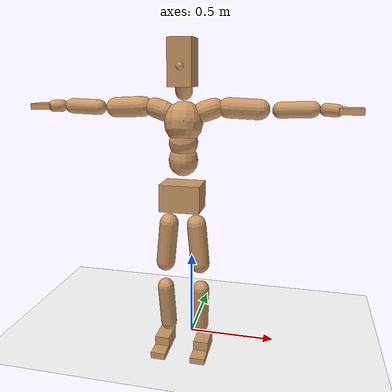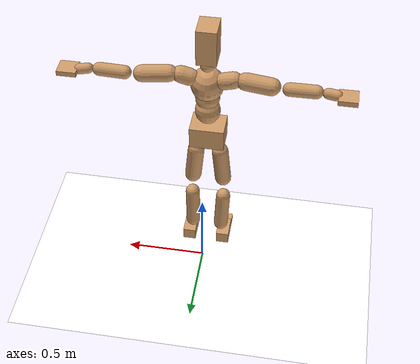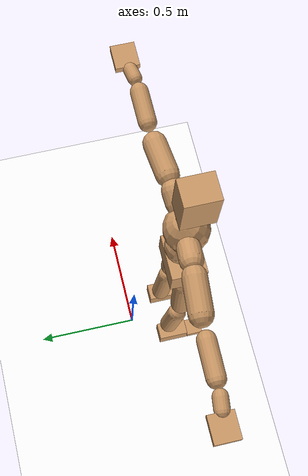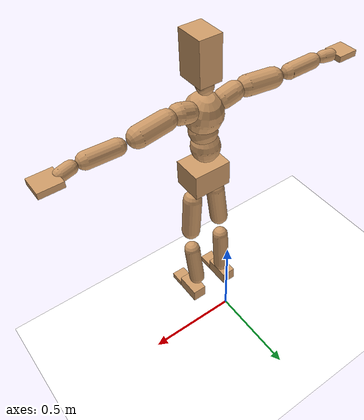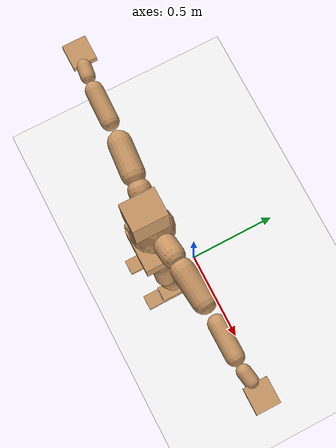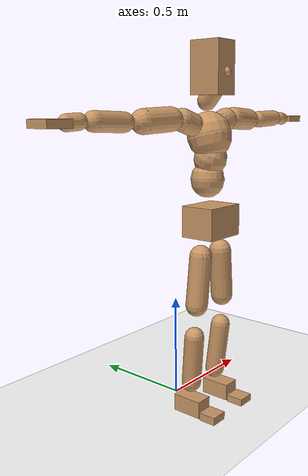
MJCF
<mujoco model="humanoid">
  <option integrator="implicitfast" />

  <visual>
    <global offwidth="1280" offheight="960" />
    <headlight active="1" ambient="0.34 0.34 0.34" diffuse="0.5 0.5 0.5" />
  </visual>

  <default>
    <joint damping="2" stiffness="2" armature="0.01" limited="true" solimplimit="0 .99 .01" />
    <geom condim="1" friction="0.7 0.005 0.0001" solimp=".99 .99 .003" solref="0.015 1" margin="0.001" rgba="0.8 0.6 .4 1" />
    <default class="smplcontact">
      <geom condim="3" friction="1. 0.005 0.0001" solref="0.015 1" solimp="0.98 0.98 0.001" priority="1" />
    </default>
    <default class="stiff_medium">
      <joint stiffness="10" />
    </default>
    <default class="stiff_medium_higher">
      <joint stiffness="50" />
    </default>
    <default class="stiff_high">
      <joint stiffness="100" />
    </default>
  </default>

  <asset>
    <texture type="skybox" builtin="gradient" rgb1="0.99 0.99 0.99" rgb2="0.608 0.828 0.892" width="100" />
    <texture builtin="flat" height="1278" mark="cross" markrgb="1 1 1" name="texgeom" random="0.01" rgb1="0.8 0.6 0.4" rgb2="0.8 0.6 0.4" type="cube" width="127" />
    <texture name="texplane" type="2d" builtin="checker" markrgb="1 1 1" rgb1="0.756 0.772 0.76" rgb2="0.6 0.6 0.6" width="100" height="100" />
    <material name="MatPlane" reflectance="0.5" texture="texplane" texrepeat="1 1" texuniform="true" />
    <material name="geom" texture="texgeom" texuniform="true" />
  </asset>

  <worldbody>
    <light name="tracking_light" pos="0 0 7" dir="0 0 -1" directional="true" cutoff="100" exponent="1" diffuse="1 1 1" specular="0.1 0.1 0.1" mode="trackcom" />
    <camera name="back" pos="0 3 2.4" xyaxes="-1 0 0 0 -1 2" mode="trackcom" />
    <camera name="side" pos="-3 0 2.4" xyaxes="0 -1 0 1 0 2" mode="trackcom" />
    <camera name="front_side" pos="-2.8 -2.8 0.8" xyaxes="0.5 -0.5 0 0.1 0.1 1" mode="trackcom" />
    <geom condim="3" name="floor" pos="0 0 0" rgba="1 1 1 1" size="100 100 .2" type="plane" material="MatPlane" />
    <body name="Pelvis" pos="-0.0018 -0.2233 0.93346" euler="90 0 0">
      <site name="Pelvis" size="0.01" />
      <freejoint name="Pelvis" />
      <geom type="box" pos="-0.0000 -0.0121 -0.0055" size="0.1069 0.0722 0.083" quat="1.0000 0.0000 0.0000 0.0000" density="3165.830099" name="Pelvis" />
      <body name="L_Hip" pos="0.0695 -0.0914 -0.0068">
        <joint name="L_Hip_x" type="hinge" pos="0 0 0" axis="1 0 0" stiffness="6.862717738095237" range="-160.0 22.92" class="stiff_medium" damping="10.18407204701845" armature="0.00671682867840693"/>
        <joint name="L_Hip_y" type="hinge" pos="0 0 0" axis="0 1 0" stiffness="6.843540833333332" range="-70.0 70.0" class="stiff_medium" damping="6.212831142752949" armature="0.005640248483701978"/>
        <joint name="L_Hip_z" type="hinge" pos="0 0 0" axis="0 0 1" stiffness="6.848027380952381" range="-28.65 90.0" class="stiff_medium" damping="6.782903954531086" armature="0.0067183998393994405"/>
        <geom type="capsule" density="2040.816327" fromto="0.0069 -0.075 -0.0009 0.0274 -0.3002 -0.0036" size="0.052275" name="L_Hip" />
        <body name="L_Knee" pos="0.0343 -0.3752 -0.0045">
          <joint name="L_Knee_x" type="hinge" pos="0 0 0" axis="1 0 0" range="-5.16 171.89" damping="5.292069806053835" armature="0.006508022870043397" stiffness="1.3447825952380952"/>
          <joint name="L_Knee_y" type="hinge" pos="0 0 0" axis="0 1 0" range="-4.58 6.88" damping="4.885017787563635" armature="0.005463809391532144" stiffness="1.3648558333333334"/>
          <joint name="L_Knee_z" type="hinge" pos="0 0 0" axis="0 0 1" range="-6.88 4.58" damping="5.291965820359806" armature="0.006515345471875371" stiffness="1.3432184047619047"/>
          <geom type="capsule" density="1234.567901" fromto="-0.0027 -0.0796 -0.0087 -0.0109 -0.3184 -0.035" size="0.045985" name="L_Knee" />
          <body name="L_Ankle" pos="-0.0136 -0.398 -0.0437">
            <joint name="L_Ankle_x" type="hinge" pos="0 0 0" axis="1 0 0" range="-45.84 45.84" class="stiff_medium" damping="3.505395739573715" armature="0.0055579525028932545" stiffness="6.141250000000001"/>
            <joint name="L_Ankle_y" type="hinge" pos="0 0 0" axis="0 1 0" range="-74.48 22.92" class="stiff_medium" damping="1.7461104640747676" armature="0.005516252577517968" stiffness="6.141250000000001"/>
            <joint name="L_Ankle_z" type="hinge" pos="0 0 0" axis="0 0 1" range="-4.58 4.58" class="stiff_medium" damping="3.404711663388338" armature="0.0052432600632392875" stiffness="6.141250000000001"/>
            <geom type="box" pos="0.0233 -0.0239 0.0242" size="0.041055 0.03944 0.07225" quat="1.0000 0.0000 0.0000 0.0000" density="449.071558" name="L_Ankle" class="smplcontact" />
            <body name="L_Toe" pos="0.0264 -0.0558 0.1193">
              <joint name="L_Toe_x" type="hinge" pos="0 0 0" axis="1 0 0" range="-91.67 22.92" armature="0.00508496817556758" damping="1.1176414596498183" stiffness="1.2282500000000003"/>
              <joint name="L_Toe_y" type="hinge" pos="0 0 0" axis="0 1 0" range="-4.58 4.58" armature="0.004893561584678726" damping="1.096404762519905" stiffness="1.2282500000000003"/>
              <joint name="L_Toe_z" type="hinge" pos="0 0 0" axis="0 0 1" range="-4.58 4.58" armature="0.004506547760312158" damping="1.0521565745271384" stiffness="1.2282500000000003"/>
              <geom type="box" pos="-0.003 0.0055 0.0248" size="0.04063 0.017 0.04216" quat="1.0000 0.0000 0.0000 0.0000" density="423.206892" name="L_Toe" class="smplcontact" />
            </body>
          </body>
        </body>
      </body>
      <body name="R_Hip" pos="-0.0677 -0.0905 -0.0043">
        <joint name="R_Hip_x" type="hinge" pos="0 0 0" axis="1 0 0" stiffness="6.862717738095237" range="-160.0 22.92" class="stiff_medium" damping="10.18407204701845" armature="0.00671682867840693"/>
        <joint name="R_Hip_y" type="hinge" pos="0 0 0" axis="0 1 0" stiffness="6.843540833333332" range="-70.0 70.0" class="stiff_medium" damping="6.212831142752949" armature="0.005640248483701978"/>
        <joint name="R_Hip_z" type="hinge" pos="0 0 0" axis="0 0 1" stiffness="6.848027380952381" range="-90.0 28.65" class="stiff_medium" damping="6.782903954531086" armature="0.0067183998393994405"/>
        <geom type="capsule" density="2040.816327" fromto="-0.0077 -0.0765 -0.0018 -0.0306 -0.3061 -0.0071" size="0.05151" name="R_Hip" />
        <body name="R_Knee" pos="-0.0383 -0.3826 -0.0089">
          <joint name="R_Knee_x" type="hinge" pos="0 0 0" axis="1 0 0" range="-5.16 171.89" damping="5.292069806053835" armature="0.006508022870043397" stiffness="1.3447825952380952"/>
          <joint name="R_Knee_y" type="hinge" pos="0 0 0" axis="0 1 0" range="-6.88 4.58" damping="4.885017787563635" armature="0.005463809391532144" stiffness="1.3648558333333334"/>
          <joint name="R_Knee_z" type="hinge" pos="0 0 0" axis="0 0 1" range="-4.58 6.88" damping="5.291965820359806" armature="0.006515345471875371" stiffness="1.3432184047619047"/>
          <geom type="capsule" density="1234.567901" fromto="0.0032 -0.0797 -0.0085 0.0126 -0.3187 -0.0338" size="0.045985" name="R_Knee" />
          <body name="R_Ankle" pos="0.0158 -0.3984 -0.0423">
            <joint name="R_Ankle_x" type="hinge" pos="0 0 0" axis="1 0 0" range="-45.84 45.84" class="stiff_medium" damping="3.505395739573715" armature="0.0055579525028932545" stiffness="6.141250000000001"/>
            <joint name="R_Ankle_y" type="hinge" pos="0 0 0" axis="0 1 0" range="-22.92 74.48" class="stiff_medium" damping="1.7461104640747676" armature="0.005516252577517968" stiffness="6.141250000000001"/>
            <joint name="R_Ankle_z" type="hinge" pos="0 0 0" axis="0 0 1" range="-4.58 4.58" class="stiff_medium" damping="3.404711663388338" armature="0.0052432600632392875" stiffness="6.141250000000001"/>
            <geom type="box" pos="-0.0212 -0.0174 0.0256" size="0.041055 0.04063 0.073525" quat="1.0000 0.0000 0.0000 0.0000" density="434.700981" name="R_Ankle" class="smplcontact" />
            <body name="R_Toe" pos="-0.0254 -0.0481 0.1233">
              <joint name="R_Toe_x" type="hinge" pos="0 0 0" axis="1 0 0" range="-91.67 22.92" armature="0.00508496817556758" damping="1.1176414596498183" stiffness="1.2282500000000003"/>
              <joint name="R_Toe_y" type="hinge" pos="0 0 0" axis="0 1 0" range="-4.58 4.58" armature="0.004893561584678726" damping="1.096404762519905" stiffness="1.2282500000000003"/>
              <joint name="R_Toe_z" type="hinge" pos="0 0 0" axis="0 0 1" range="-4.58 4.58" armature="0.004506547760312158" damping="1.0521565745271384" stiffness="1.2282500000000003"/>
              <geom type="box" pos="0.0042 0.0045 0.0227" size="0.040715 0.01836 0.041905" quat="1.0000 0.0000 0.0000 0.0000" density="407.384095" name="R_Toe" class="smplcontact" />
            </body>
          </body>
        </body>
      </body>
      <body name="Torso" pos="-0.0025 0.109 -0.0267">
        <joint name="Torso_x" type="hinge" pos="0 0 0" axis="1 0 0" range="-25.78 57.3" class="stiff_medium" damping="15.0" armature="0.010000000000000002" stiffness="10.0"/>
        <joint name="Torso_y" type="hinge" pos="0 0 0" axis="0 1 0" range="-57.3 57.3" class="stiff_high" damping="20.0" armature="0.010000000000000002" stiffness="100.0"/>
        <joint name="Torso_z" type="hinge" pos="0 0 0" axis="0 0 1" range="-34.38 34.38" class="stiff_high" damping="20.0" armature="0.01" stiffness="100.0"/>
        <geom type="capsule" density="2040.816327" fromto="0.0025 0.0608 0.0005 0.003 0.0743 0.0006" size="0.0769" name="Torso" />
        <body name="Spine" pos="0.0055 0.1352 0.0011">
          <joint name="Spine_x" type="hinge" pos="0 0 0" axis="1 0 0" stiffness="10.0" range="-25.78 57.3" class="stiff_medium" damping="15.000000000000004" armature="0.010000000000000007"/>
          <joint name="Spine_y" type="hinge" pos="0 0 0" axis="0 1 0" stiffness="10.0" range="-57.3 57.3" class="stiff_high" damping="8.0" armature="0.010000000000000002"/>
          <joint name="Spine_z" type="hinge" pos="0 0 0" axis="0 0 1" stiffness="20.0" range="-34.38 34.38" class="stiff_high" damping="12.0" armature="0.01"/>
          <geom type="capsule" density="2040.816327" fromto="0.0007 0.0238 0.0114 0.0008 0.0291 0.014" size="0.0755" name="Spine" />
          <body name="Chest" pos="0.0015 0.0529 0.0254">
            <joint name="Chest_x" type="hinge" pos="0 0 0" axis="1 0 0" stiffness="10.0" range="-25.78 57.3" class="stiff_medium" damping="14.999999999999998" armature="0.009999999999999998"/>
            <joint name="Chest_y" type="hinge" pos="0 0 0" axis="0 1 0" stiffness="10.0" range="-57.3 57.3" class="stiff_high" damping="8.0" armature="0.010000000000000002"/>
            <joint name="Chest_z" type="hinge" pos="0 0 0" axis="0 0 1" stiffness="20.0" range="-34.38 34.38" class="stiff_high" damping="12.0" armature="0.010000000000000002"/>
            <geom type="capsule" density="2040.816327" fromto="-0.0009 0.0682 -0.0173 -0.001 0.0833 -0.0212" size="0.1002" name="Chest" />
            <body name="Neck" pos="-0.0028 0.2139 -0.0429">
              <joint name="Neck_x" type="hinge" pos="0 0 0" axis="1 0 0" range="-28.65 57.3" class="stiff_medium_higher" damping="9.999999999999993" armature="0.009999999999999988" stiffness="50.0"/>
              <joint name="Neck_y" type="hinge" pos="0 0 0" axis="0 1 0" range="-40.11 40.11" class="stiff_medium_higher" damping="10.0" armature="0.010000000000000002" stiffness="50.0"/>
              <joint name="Neck_z" type="hinge" pos="0 0 0" axis="0 0 1" range="-40.11 40.11" class="stiff_medium_higher" damping="9.99999999999999" armature="0.009999999999999978" stiffness="50.0"/>
              <geom type="capsule" density="1000" fromto="0.001 0.013 0.0103 0.0041 0.052 0.0411" size="0.0436" name="Neck" />
              <body name="Head" pos="0.0052 0.065 0.0513">
                <joint name="Head_x" type="hinge" pos="0 0 0" axis="1 0 0" range="-28.65 57.3" class="stiff_medium_higher" damping="1.9999999999999973" armature="0.009999999999999974" stiffness="50.0"/>
                <joint name="Head_y" type="hinge" pos="0 0 0" axis="0 1 0" range="-40.11 40.11" class="stiff_medium_higher" damping="1.9999999999999998" armature="0.009999999999999998" stiffness="50.0"/>
                <joint name="Head_z" type="hinge" pos="0 0 0" axis="0 0 1" range="-40.11 40.11" class="stiff_medium_higher" damping="1.9999999999999953" armature="0.009999999999999955" stiffness="50.0"/>
                <geom type="box" pos="-0.0042 0.0876 -0.0116" size="0.0606 0.1154 0.076" quat="1.0000 0.0000 0.0000 0.0000" density="1018.069894" name="Head" />
                <geom type="capsule" name="nose" size="0.02 0.01" pos="0 0.07 0.05" quat="1 0 0 0" mass="0" contype="0" conaffinity="0" />
              </body>
            </body>
            <body name="L_Thorax" pos="0.0788 0.1217 -0.0341">
              <joint name="L_Thorax_x" type="hinge" pos="0 0 0" axis="1 0 0" range="-10.89 4.58" class="stiff_medium_higher" damping="19.999999999999957" armature="0.009999999999999959" stiffness="50.0"/>
              <joint name="L_Thorax_y" type="hinge" pos="0 0 0" axis="0 1 0" range="-28.65 17.19" class="stiff_medium_higher" damping="20.0" armature="0.010000000000000002" stiffness="50.0"/>
              <joint name="L_Thorax_z" type="hinge" pos="0 0 0" axis="0 0 1" range="-31.51 40.11" class="stiff_medium_higher" damping="20.0" armature="0.01" stiffness="50.0"/>
              <geom type="capsule" density="1000" fromto="0.0182 0.0061 -0.0018 0.0728 0.0244 -0.0071" size="0.0521" name="L_Thorax" />
              <body name="L_Shoulder" pos="0.091 0.0305 -0.0089">
                <joint name="L_Shoulder_x" type="hinge" pos="0 0 0" axis="1 0 0" range="-97.4 97.4" class="stiff_medium" damping="6.0000000000000355" armature="0.01000000000000012" stiffness="10.0"/>
                <joint name="L_Shoulder_y" type="hinge" pos="0 0 0" axis="0 1 0" range="-108.86 80.21" class="stiff_medium" damping="6.0" armature="0.01" stiffness="10.0"/>
                <joint name="L_Shoulder_z" type="hinge" pos="0 0 0" axis="0 0 1" range="-97.4 85.94" class="stiff_medium" damping="6.000000000000003" armature="0.010000000000000009" stiffness="10.0"/>
                <geom type="capsule" density="1000" fromto="0.0519 -0.0026 -0.0055 0.2077 -0.0102 -0.022" size="0.0517" name="L_Shoulder" />
                <body name="L_Elbow" pos="0.2596 -0.0128 -0.0275">
                  <joint name="L_Elbow_x" type="hinge" pos="0 0 0" axis="1 0 0" range="-17.19 4.58" damping="4.999999999999992" armature="0.009999999999999967" stiffness="2.0"/>
                  <joint name="L_Elbow_y" type="hinge" pos="0 0 0" axis="0 1 0" range="-180.0 17.19" damping="5.0000000000000036" armature="0.010000000000000014" stiffness="2.0"/>
                  <joint name="L_Elbow_z" type="hinge" pos="0 0 0" axis="0 0 1" range="-100.84 4.58" damping="5.000000000000002" armature="0.010000000000000009" stiffness="2.0"/>
                  <geom type="capsule" density="1000" fromto="0.0498 0.0018 -0.0002 0.1994 0.0072 -0.0009" size="0.0405" name="L_Elbow" />
                  <body name="L_Wrist" pos="0.2492 0.009 -0.0012">
                    <joint name="L_Wrist_x" type="hinge" pos="0 0 0" axis="1 0 0" range="-180.0 22.92" armature="0.009999999999999554" damping="1.9999999999999554" stiffness="2.0"/>
                    <joint name="L_Wrist_y" type="hinge" pos="0 0 0" axis="0 1 0" range="-17.19 17.19" armature="0.009999999999999945" damping="1.9999999999999944" stiffness="2.0"/>
                    <joint name="L_Wrist_z" type="hinge" pos="0 0 0" axis="0 0 1" range="-22.92 22.92" armature="0.009999999999999903" damping="1.9999999999999902" stiffness="2.0"/>
                    <geom type="capsule" density="1000" fromto="0.0168 -0.0016 -0.003 0.0672 -0.0065 -0.012" size="0.0318" name="L_Wrist" class="smplcontact" />
                    <body name="L_Hand" pos="0.084 -0.0082 -0.0149">
                      <joint name="L_Hand_x" type="hinge" pos="0 0 0" axis="1 0 0" range="-17.19 17.19" armature="0.009999999999999816" damping="1.9999999999999816" stiffness="2.0"/>
                      <joint name="L_Hand_y" type="hinge" pos="0 0 0" axis="0 1 0" range="-51.57 51.57" armature="0.010000000000000177" damping="2.0000000000000178" stiffness="2.0"/>
                      <joint name="L_Hand_z" type="hinge" pos="0 0 0" axis="0 0 1" range="-91.67 91.67" armature="0.010000000000000009" damping="2.000000000000001" stiffness="2.0"/>
                      <geom type="box" pos="0.0493 0.001 -0.0058" size="0.0585 0.0158 0.0538" quat="1.0000 0.0000 0.0000 0.0000" density="400.552564" name="L_Hand" class="smplcontact" />
                    </body>
                  </body>
                </body>
              </body>
            </body>
            <body name="R_Thorax" pos="-0.0818 0.1188 -0.0386">
              <joint name="R_Thorax_x" type="hinge" pos="0 0 0" axis="1 0 0" range="-10.89 4.58" class="stiff_medium_higher" damping="19.999999999999957" armature="0.009999999999999959" stiffness="50.0"/>
              <joint name="R_Thorax_y" type="hinge" pos="0 0 0" axis="0 1 0" range="-17.19 28.65" class="stiff_medium_higher" damping="20.0" armature="0.010000000000000002" stiffness="50.0"/>
              <joint name="R_Thorax_z" type="hinge" pos="0 0 0" axis="0 0 1" range="-40.11 31.51" class="stiff_medium_higher" damping="20.0" armature="0.01" stiffness="50.0"/>
              <geom type="capsule" density="1000" fromto="-0.0192 0.0065 -0.0018 -0.0768 0.026 -0.0073" size="0.0511" name="R_Thorax" />
              <body name="R_Shoulder" pos="-0.096 0.0326 -0.0091">
                <joint name="R_Shoulder_x" type="hinge" pos="0 0 0" axis="1 0 0" range="-97.4 97.4" class="stiff_medium" damping="6.0000000000000355" armature="0.01000000000000012" stiffness="10.0"/>
                <joint name="R_Shoulder_y" type="hinge" pos="0 0 0" axis="0 1 0" range="-80.21 108.86" class="stiff_medium" damping="6.0" armature="0.01" stiffness="10.0"/>
                <joint name="R_Shoulder_z" type="hinge" pos="0 0 0" axis="0 0 1" range="-85.94 97.4" class="stiff_medium" damping="6.000000000000003" armature="0.010000000000000009" stiffness="10.0"/>
                <geom type="capsule" density="1000" fromto="-0.0507 -0.0027 -0.0043 -0.203 -0.0107 -0.0171" size="0.0531" name="R_Shoulder" />
                <body name="R_Elbow" pos="-0.2537 -0.0133 -0.0214">
                  <joint name="R_Elbow_x" type="hinge" pos="0 0 0" axis="1 0 0" range="-17.19 4.58" damping="4.999999999999992" armature="0.009999999999999967" stiffness="2.0"/>
                  <joint name="R_Elbow_y" type="hinge" pos="0 0 0" axis="0 1 0" range="-17.19 180.0" damping="5.0000000000000036" armature="0.010000000000000014" stiffness="2.0"/>
                  <joint name="R_Elbow_z" type="hinge" pos="0 0 0" axis="0 0 1" range="-4.58 100.84" damping="5.000000000000002" armature="0.010000000000000009" stiffness="2.0"/>
                  <geom type="capsule" density="1000" fromto="-0.0511 0.0016 -0.0011 -0.2042 0.0062 -0.0044" size="0.0408" name="R_Elbow" />
                  <body name="R_Wrist" pos="-0.2553 0.0078 -0.0056">
                    <joint name="R_Wrist_x" type="hinge" pos="0 0 0" axis="1 0 0" range="-180.0 22.92" armature="0.009999999999999554" damping="1.9999999999999554" stiffness="2.0"/>
                    <joint name="R_Wrist_y" type="hinge" pos="0 0 0" axis="0 1 0" range="-17.19 17.19" armature="0.009999999999999945" damping="1.9999999999999944" stiffness="2.0"/>
                    <joint name="R_Wrist_z" type="hinge" pos="0 0 0" axis="0 0 1" range="-22.92 22.92" armature="0.009999999999999903" damping="1.9999999999999902" stiffness="2.0"/>
                    <geom type="capsule" density="1000" fromto="-0.0169 -0.0012 -0.0021 -0.0677 -0.0049 -0.0083" size="0.0326" name="R_Wrist" class="smplcontact" />
                    <body name="R_Hand" pos="-0.0846 -0.0061 -0.0103">
                      <joint name="R_Hand_x" type="hinge" pos="0 0 0" axis="1 0 0" range="-17.19 17.19" armature="0.009999999999999816" damping="1.9999999999999816" stiffness="2.0"/>
                      <joint name="R_Hand_y" type="hinge" pos="0 0 0" axis="0 1 0" range="-51.57 51.57" armature="0.010000000000000177" damping="2.0000000000000178" stiffness="2.0"/>
                      <joint name="R_Hand_z" type="hinge" pos="0 0 0" axis="0 0 1" range="-91.67 91.67" armature="0.010000000000000009" damping="2.000000000000001" stiffness="2.0"/>
                      <geom type="box" pos="-0.0462 -0.0009 -0.0079" size="0.0569 0.0164 0.0546" quat="1.0000 0.0000 0.0000 0.0000" density="403.679611" name="R_Hand" class="smplcontact" />
                    </body>
                  </body>
                </body>
              </body>
            </body>
          </body>
        </body>
      </body>
    </body>
  </worldbody>
  <actuator>
    <general name="L_Hip_x" joint="L_Hip_x" biastype="affine" gainprm="197.18651275687364" biasprm="-147.7713053176921 -123.52891928571428 -1.3578762729357934" ctrllimited="true" ctrlrange="-1 1" forcerange="-247.05783857142856 247.05783857142856" />
    <general name="L_Hip_y" joint="L_Hip_y" biastype="affine" gainprm="150.49732324579236" biasprm="0.0 -123.18373499999998 -1.2425662285505896" ctrllimited="true" ctrlrange="-1 1" forcerange="-246.36746999999997 246.36746999999997" />
    <general name="L_Hip_z" joint="L_Hip_z" biastype="affine" gainprm="127.63009947495874" biasprm="65.99331312927701 -123.26449285714286 -1.3565807909062173" ctrllimited="true" ctrlrange="-1 1" forcerange="-246.5289857142857 246.5289857142857" />
    <general name="L_Knee_x" joint="L_Knee_x" biastype="affine" gainprm="186.99840063201063" biasprm="176.09852209757202 -121.03043357142856 -1.3230174515134587" ctrllimited="true" ctrlrange="-1 1" forcerange="-242.06086714285712 242.06086714285712" />
    <general name="L_Knee_y" joint="L_Knee_y" biastype="affine" gainprm="12.284607334634286" biasprm="2.465497109045276 -122.83702500000001 -1.2212544468909088" ctrllimited="true" ctrlrange="-1 1" forcerange="-245.67405000000002 245.67405000000002" />
    <general name="L_Knee_z" joint="L_Knee_z" biastype="affine" gainprm="12.08985613290331" biasprm="-2.4264109167257955 -120.88965642857143 -1.3229914550899515" ctrllimited="true" ctrlrange="-1 1" forcerange="-241.77931285714286 241.77931285714286" />
    <general name="L_Ankle_x" joint="L_Ankle_x" biastype="affine" gainprm="44.22025708580328" biasprm="0.0 -55.271250000000016 -1.1684652465245717" ctrllimited="true" ctrlrange="-1 1" forcerange="-110.54250000000003 110.54250000000003" />
    <general name="L_Ankle_y" joint="L_Ankle_y" biastype="affine" gainprm="46.97919982719502" biasprm="-24.86907128429338 -55.271250000000016 -1.1640736427165117" ctrllimited="true" ctrlrange="-1 1" forcerange="-110.54250000000003 110.54250000000003" />
    <general name="L_Ankle_z" joint="L_Ankle_z" biastype="affine" gainprm="4.418167047403555" biasprm="0.0 -55.271250000000016 -1.1349038877961126" ctrllimited="true" ctrlrange="-1 1" forcerange="-110.54250000000003 110.54250000000003" />
    <general name="L_Toe_x" joint="L_Toe_x" biastype="affine" gainprm="44.2163984246265" biasprm="-26.528295590305188 -44.21700000000001 -0.44705658385992736" ctrllimited="true" ctrlrange="-1 1" forcerange="-88.43400000000003 88.43400000000003" />
    <general name="L_Toe_y" joint="L_Toe_y" biastype="affine" gainprm="3.5345336379228445" biasprm="0.0 -44.21700000000001 -0.438561905007962" ctrllimited="true" ctrlrange="-1 1" forcerange="-88.43400000000003 88.43400000000003" />
    <general name="L_Toe_z" joint="L_Toe_z" biastype="affine" gainprm="3.5345336379228445" biasprm="0.0 -44.21700000000001 -0.42086262981085537" ctrllimited="true" ctrlrange="-1 1" forcerange="-88.43400000000003 88.43400000000003" />
    <general name="R_Hip_x" joint="R_Hip_x" biastype="affine" gainprm="197.18651275687364" biasprm="-147.7713053176921 -123.52891928571428 -1.3578762729357934" ctrllimited="true" ctrlrange="-1 1" forcerange="-247.05783857142856 247.05783857142856" />
    <general name="R_Hip_y" joint="R_Hip_y" biastype="affine" gainprm="150.49732324579236" biasprm="0.0 -123.18373499999998 -1.2425662285505896" ctrllimited="true" ctrlrange="-1 1" forcerange="-246.36746999999997 246.36746999999997" />
    <general name="R_Hip_z" joint="R_Hip_z" biastype="affine" gainprm="127.63009947495874" biasprm="-65.99331312927701 -123.26449285714286 -1.3565807909062173" ctrllimited="true" ctrlrange="-1 1" forcerange="-246.5289857142857 246.5289857142857" />
    <general name="R_Knee_x" joint="R_Knee_x" biastype="affine" gainprm="186.99840063201063" biasprm="176.09852209757202 -121.03043357142856 -1.3230174515134587" ctrllimited="true" ctrlrange="-1 1" forcerange="-242.06086714285712 242.06086714285712" />
    <general name="R_Knee_y" joint="R_Knee_y" biastype="affine" gainprm="12.284607334634286" biasprm="-2.465497109045276 -122.83702500000001 -1.2212544468909088" ctrllimited="true" ctrlrange="-1 1" forcerange="-245.67405000000002 245.67405000000002" />
    <general name="R_Knee_z" joint="R_Knee_z" biastype="affine" gainprm="12.08985613290331" biasprm="2.4264109167257955 -120.88965642857143 -1.3229914550899515" ctrllimited="true" ctrlrange="-1 1" forcerange="-241.77931285714286 241.77931285714286" />
    <general name="R_Ankle_x" joint="R_Ankle_x" biastype="affine" gainprm="44.22025708580328" biasprm="0.0 -55.271250000000016 -1.1684652465245717" ctrllimited="true" ctrlrange="-1 1" forcerange="-110.54250000000003 110.54250000000003" />
    <general name="R_Ankle_y" joint="R_Ankle_y" biastype="affine" gainprm="46.97919982719502" biasprm="24.86907128429338 -55.271250000000016 -1.1640736427165117" ctrllimited="true" ctrlrange="-1 1" forcerange="-110.54250000000003 110.54250000000003" />
    <general name="R_Ankle_z" joint="R_Ankle_z" biastype="affine" gainprm="4.418167047403555" biasprm="0.0 -55.271250000000016 -1.1349038877961126" ctrllimited="true" ctrlrange="-1 1" forcerange="-110.54250000000003 110.54250000000003" />
    <general name="R_Toe_x" joint="R_Toe_x" biastype="affine" gainprm="44.2163984246265" biasprm="-26.528295590305188 -44.21700000000001 -0.44705658385992736" ctrllimited="true" ctrlrange="-1 1" forcerange="-88.43400000000003 88.43400000000003" />
    <general name="R_Toe_y" joint="R_Toe_y" biastype="affine" gainprm="3.5345336379228445" biasprm="0.0 -44.21700000000001 -0.438561905007962" ctrllimited="true" ctrlrange="-1 1" forcerange="-88.43400000000003 88.43400000000003" />
    <general name="R_Toe_z" joint="R_Toe_z" biastype="affine" gainprm="3.5345336379228445" biasprm="0.0 -44.21700000000001 -0.42086262981085537" ctrllimited="true" ctrlrange="-1 1" forcerange="-88.43400000000003 88.43400000000003" />
    <general name="Torso_x" joint="Torso_x" biastype="affine" gainprm="174.00234510682668" biasprm="66.0153336274335 -240.0 -4.0" ctrllimited="true" ctrlrange="-1 1" forcerange="-360.0 360.0" />
    <general name="Torso_y" joint="Torso_y" biastype="affine" gainprm="240.0176787342602" biasprm="0.0 -240.0 -4.0" ctrllimited="true" ctrlrange="-1 1" forcerange="-360.0 360.0" />
    <general name="Torso_z" joint="Torso_z" biastype="affine" gainprm="144.01060724055614" biasprm="0.0 -240.0 -4.0" ctrllimited="true" ctrlrange="-1 1" forcerange="-360.0 360.0" />
    <general name="Spine_x" joint="Spine_x" biastype="affine" gainprm="174.00234510682668" biasprm="66.0153336274335 -240.0 -4.000000000000001" ctrllimited="true" ctrlrange="-1 1" forcerange="-360.0 360.0" />
    <general name="Spine_y" joint="Spine_y" biastype="affine" gainprm="240.0176787342602" biasprm="0.0 -240.0 -4.0" ctrllimited="true" ctrlrange="-1 1" forcerange="-360.0 360.0" />
    <general name="Spine_z" joint="Spine_z" biastype="affine" gainprm="144.01060724055614" biasprm="0.0 -240.0 -4.0" ctrllimited="true" ctrlrange="-1 1" forcerange="-360.0 360.0" />
    <general name="Chest_x" joint="Chest_x" biastype="affine" gainprm="174.00234510682668" biasprm="66.0153336274335 -240.0 -3.9999999999999996" ctrllimited="true" ctrlrange="-1 1" forcerange="-360.0 360.0" />
    <general name="Chest_y" joint="Chest_y" biastype="affine" gainprm="240.0176787342602" biasprm="0.0 -240.0 -4.0" ctrllimited="true" ctrlrange="-1 1" forcerange="-360.0 360.0" />
    <general name="Chest_z" joint="Chest_z" biastype="affine" gainprm="144.01060724055614" biasprm="0.0 -240.0 -4.0" ctrllimited="true" ctrlrange="-1 1" forcerange="-360.0 360.0" />
    <general name="Neck_x" joint="Neck_x" biastype="affine" gainprm="27.00198885760427" biasprm="9.000662952534757 -36.0 -0.7999999999999995" ctrllimited="true" ctrlrange="-1 1" forcerange="-72.0 72.0" />
    <general name="Neck_y" joint="Neck_y" biastype="affine" gainprm="25.20185626709732" biasprm="0.0 -36.0 -0.8" ctrllimited="true" ctrlrange="-1 1" forcerange="-72.0 72.0" />
    <general name="Neck_z" joint="Neck_z" biastype="affine" gainprm="25.20185626709732" biasprm="0.0 -36.0 -0.7999999999999992" ctrllimited="true" ctrlrange="-1 1" forcerange="-72.0 72.0" />
    <general name="Head_x" joint="Head_x" biastype="affine" gainprm="18.001325905069514" biasprm="6.000441968356505 -24.0 -0.7999999999999989" ctrllimited="true" ctrlrange="-1 1" forcerange="-48.0 48.0" />
    <general name="Head_y" joint="Head_y" biastype="affine" gainprm="16.801237511398213" biasprm="0.0 -24.0 -0.7999999999999999" ctrllimited="true" ctrlrange="-1 1" forcerange="-48.0 48.0" />
    <general name="Head_z" joint="Head_z" biastype="affine" gainprm="16.801237511398213" biasprm="0.0 -24.0 -0.7999999999999982" ctrllimited="true" ctrlrange="-1 1" forcerange="-48.0 48.0" />
    <general name="L_Thorax_x" joint="L_Thorax_x" biastype="affine" gainprm="16.200146117011364" biasprm="-6.6078165480505335 -120.0 -1.5999999999999968" ctrllimited="true" ctrlrange="-1 1" forcerange="-240.0 240.0" />
    <general name="L_Thorax_y" joint="L_Thorax_y" biastype="affine" gainprm="48.00353574685204" biasprm="-12.00088393671301 -120.0 -1.6" ctrllimited="true" ctrlrange="-1 1" forcerange="-240.0 240.0" />
    <general name="L_Thorax_z" joint="L_Thorax_z" biastype="affine" gainprm="75.00028861670033" biasprm="9.00589894029074 -120.0 -1.6" ctrllimited="true" ctrlrange="-1 1" forcerange="-240.0 240.0" />
    <general name="L_Shoulder_x" joint="L_Shoulder_x" biastype="affine" gainprm="81.5976331892389" biasprm="0.0 -48.0 -1.6000000000000096" ctrllimited="true" ctrlrange="-1 1" forcerange="-96.0 96.0" />
    <general name="L_Shoulder_y" joint="L_Shoulder_y" biastype="affine" gainprm="79.19745640189629" biasprm="-12.00088393671301 -48.0 -1.6" ctrllimited="true" ctrlrange="-1 1" forcerange="-96.0 96.0" />
    <general name="L_Shoulder_z" joint="L_Shoulder_z" biastype="affine" gainprm="76.79727961455369" biasprm="-4.800353574685214 -48.0 -1.6000000000000008" ctrllimited="true" ctrlrange="-1 1" forcerange="-96.0 96.0" />
    <general name="L_Elbow_x" joint="L_Elbow_x" biastype="affine" gainprm="13.67849441372996" biasprm="-7.923096672353461 -72.0 -0.7999999999999987" ctrllimited="true" ctrlrange="-1 1" forcerange="-144.0 144.0" />
    <general name="L_Elbow_y" joint="L_Elbow_y" biastype="affine" gainprm="123.89813107227425" biasprm="-102.29653998619085 -72.0 -0.8000000000000006" ctrllimited="true" ctrlrange="-1 1" forcerange="-144.0 144.0" />
    <general name="L_Elbow_z" joint="L_Elbow_z" biastype="affine" gainprm="66.23733950828719" biasprm="-60.4819417669107 -72.0 -0.8000000000000004" ctrllimited="true" ctrlrange="-1 1" forcerange="-144.0 144.0" />
    <general name="L_Wrist_x" joint="L_Wrist_x" biastype="affine" gainprm="21.24973270888136" biasprm="-16.449379134196157 -12.0 -0.7999999999999822" ctrllimited="true" ctrlrange="-1 1" forcerange="-24.0 24.0" />
    <general name="L_Wrist_y" joint="L_Wrist_y" biastype="affine" gainprm="3.6002651810139037" biasprm="0.0 -12.0 -0.7999999999999978" ctrllimited="true" ctrlrange="-1 1" forcerange="-24.0 24.0" />
    <general name="L_Wrist_z" joint="L_Wrist_z" biastype="affine" gainprm="4.800353574685205" biasprm="0.0 -12.0 -0.7999999999999962" ctrllimited="true" ctrlrange="-1 1" forcerange="-24.0 24.0" />
    <general name="L_Hand_x" joint="L_Hand_x" biastype="affine" gainprm="3.6002651810139037" biasprm="0.0 -12.0 -0.7999999999999927" ctrllimited="true" ctrlrange="-1 1" forcerange="-24.0 24.0" />
    <general name="L_Hand_y" joint="L_Hand_y" biastype="affine" gainprm="10.800795543041708" biasprm="0.0 -12.0 -0.8000000000000071" ctrllimited="true" ctrlrange="-1 1" forcerange="-24.0 24.0" />
    <general name="L_Hand_z" joint="L_Hand_z" biastype="affine" gainprm="19.199319903638422" biasprm="0.0 -12.0 -0.8000000000000004" ctrllimited="true" ctrlrange="-1 1" forcerange="-24.0 24.0" />
    <general name="R_Thorax_x" joint="R_Thorax_x" biastype="affine" gainprm="16.200146117011364" biasprm="-6.6078165480505335 -120.0 -1.5999999999999968" ctrllimited="true" ctrlrange="-1 1" forcerange="-240.0 240.0" />
    <general name="R_Thorax_y" joint="R_Thorax_y" biastype="affine" gainprm="48.00353574685204" biasprm="12.000883936713002 -120.0 -1.6" ctrllimited="true" ctrlrange="-1 1" forcerange="-240.0 240.0" />
    <general name="R_Thorax_z" joint="R_Thorax_z" biastype="affine" gainprm="75.00028861670033" biasprm="-9.00589894029074 -120.0 -1.6" ctrllimited="true" ctrlrange="-1 1" forcerange="-240.0 240.0" />
    <general name="R_Shoulder_x" joint="R_Shoulder_x" biastype="affine" gainprm="81.5976331892389" biasprm="0.0 -48.0 -1.6000000000000096" ctrllimited="true" ctrlrange="-1 1" forcerange="-96.0 96.0" />
    <general name="R_Shoulder_y" joint="R_Shoulder_y" biastype="affine" gainprm="79.19745640189629" biasprm="12.00088393671301 -48.0 -1.6" ctrllimited="true" ctrlrange="-1 1" forcerange="-96.0 96.0" />
    <general name="R_Shoulder_z" joint="R_Shoulder_z" biastype="affine" gainprm="76.79727961455369" biasprm="4.800353574685204 -48.0 -1.6000000000000008" ctrllimited="true" ctrlrange="-1 1" forcerange="-96.0 96.0" />
    <general name="R_Elbow_x" joint="R_Elbow_x" biastype="affine" gainprm="13.67849441372996" biasprm="-7.923096672353461 -72.0 -0.7999999999999987" ctrllimited="true" ctrlrange="-1 1" forcerange="-144.0 144.0" />
    <general name="R_Elbow_y" joint="R_Elbow_y" biastype="affine" gainprm="123.89813107227425" biasprm="102.29653998619085 -72.0 -0.8000000000000006" ctrllimited="true" ctrlrange="-1 1" forcerange="-144.0 144.0" />
    <general name="R_Elbow_z" joint="R_Elbow_z" biastype="affine" gainprm="66.23733950828719" biasprm="60.481941766910694 -72.0 -0.8000000000000004" ctrllimited="true" ctrlrange="-1 1" forcerange="-144.0 144.0" />
    <general name="R_Wrist_x" joint="R_Wrist_x" biastype="affine" gainprm="21.24973270888136" biasprm="-16.449379134196157 -12.0 -0.7999999999999822" ctrllimited="true" ctrlrange="-1 1" forcerange="-24.0 24.0" />
    <general name="R_Wrist_y" joint="R_Wrist_y" biastype="affine" gainprm="3.6002651810139037" biasprm="0.0 -12.0 -0.7999999999999978" ctrllimited="true" ctrlrange="-1 1" forcerange="-24.0 24.0" />
    <general name="R_Wrist_z" joint="R_Wrist_z" biastype="affine" gainprm="4.800353574685205" biasprm="0.0 -12.0 -0.7999999999999962" ctrllimited="true" ctrlrange="-1 1" forcerange="-24.0 24.0" />
    <general name="R_Hand_x" joint="R_Hand_x" biastype="affine" gainprm="3.6002651810139037" biasprm="0.0 -12.0 -0.7999999999999927" ctrllimited="true" ctrlrange="-1 1" forcerange="-24.0 24.0" />
    <general name="R_Hand_y" joint="R_Hand_y" biastype="affine" gainprm="10.800795543041708" biasprm="0.0 -12.0 -0.8000000000000071" ctrllimited="true" ctrlrange="-1 1" forcerange="-24.0 24.0" />
    <general name="R_Hand_z" joint="R_Hand_z" biastype="affine" gainprm="19.199319903638422" biasprm="0.0 -12.0 -0.8000000000000004" ctrllimited="true" ctrlrange="-1 1" forcerange="-24.0 24.0" />
  </actuator>
  <contact>
    <exclude body1="Torso" body2="Chest" />
    <exclude body1="Head" body2="Chest" />
    <exclude body1="R_Knee" body2="R_Toe" />
    <exclude body1="R_Knee" body2="L_Ankle" />
    <exclude body1="R_Knee" body2="L_Toe" />
    <exclude body1="L_Knee" body2="L_Toe" />
    <exclude body1="L_Knee" body2="R_Ankle" />
    <exclude body1="L_Knee" body2="R_Toe" />
    <exclude body1="L_Shoulder" body2="Chest" />
    <exclude body1="R_Shoulder" body2="Chest" />
  </contact>
  <sensor>
    <framelinvel name="sensor_Pelvis_framelinvel" objtype="xbody" objname="Pelvis" />
    <framelinvel name="sensor_L_Hip_framelinvel" objtype="xbody" objname="L_Hip" />
    <framelinvel name="sensor_L_Knee_framelinvel" objtype="xbody" objname="L_Knee" />
    <framelinvel name="sensor_L_Ankle_framelinvel" objtype="xbody" objname="L_Ankle" />
    <framelinvel name="sensor_L_Toe_framelinvel" objtype="xbody" objname="L_Toe" />
    <framelinvel name="sensor_R_Hip_framelinvel" objtype="xbody" objname="R_Hip" />
    <framelinvel name="sensor_R_Knee_framelinvel" objtype="xbody" objname="R_Knee" />
    <framelinvel name="sensor_R_Ankle_framelinvel" objtype="xbody" objname="R_Ankle" />
    <framelinvel name="sensor_R_Toe_framelinvel" objtype="xbody" objname="R_Toe" />
    <framelinvel name="sensor_Torso_framelinvel" objtype="xbody" objname="Torso" />
    <framelinvel name="sensor_Spine_framelinvel" objtype="xbody" objname="Spine" />
    <framelinvel name="sensor_Chest_framelinvel" objtype="xbody" objname="Chest" />
    <framelinvel name="sensor_Neck_framelinvel" objtype="xbody" objname="Neck" />
    <framelinvel name="sensor_Head_framelinvel" objtype="xbody" objname="Head" />
    <framelinvel name="sensor_L_Thorax_framelinvel" objtype="xbody" objname="L_Thorax" />
    <framelinvel name="sensor_L_Shoulder_framelinvel" objtype="xbody" objname="L_Shoulder" />
    <framelinvel name="sensor_L_Elbow_framelinvel" objtype="xbody" objname="L_Elbow" />
    <framelinvel name="sensor_L_Wrist_framelinvel" objtype="xbody" objname="L_Wrist" />
    <framelinvel name="sensor_L_Hand_framelinvel" objtype="xbody" objname="L_Hand" />
    <framelinvel name="sensor_R_Thorax_framelinvel" objtype="xbody" objname="R_Thorax" />
    <framelinvel name="sensor_R_Shoulder_framelinvel" objtype="xbody" objname="R_Shoulder" />
    <framelinvel name="sensor_R_Elbow_framelinvel" objtype="xbody" objname="R_Elbow" />
    <framelinvel name="sensor_R_Wrist_framelinvel" objtype="xbody" objname="R_Wrist" />
    <framelinvel name="sensor_R_Hand_framelinvel" objtype="xbody" objname="R_Hand" />
    <frameangvel name="sensor_Pelvis_frameangvel" objtype="xbody" objname="Pelvis" />
    <frameangvel name="sensor_L_Hip_frameangvel" objtype="xbody" objname="L_Hip" />
    <frameangvel name="sensor_L_Knee_frameangvel" objtype="xbody" objname="L_Knee" />
    <frameangvel name="sensor_L_Ankle_frameangvel" objtype="xbody" objname="L_Ankle" />
    <frameangvel name="sensor_L_Toe_frameangvel" objtype="xbody" objname="L_Toe" />
    <frameangvel name="sensor_R_Hip_frameangvel" objtype="xbody" objname="R_Hip" />
    <frameangvel name="sensor_R_Knee_frameangvel" objtype="xbody" objname="R_Knee" />
    <frameangvel name="sensor_R_Ankle_frameangvel" objtype="xbody" objname="R_Ankle" />
    <frameangvel name="sensor_R_Toe_frameangvel" objtype="xbody" objname="R_Toe" />
    <frameangvel name="sensor_Torso_frameangvel" objtype="xbody" objname="Torso" />
    <frameangvel name="sensor_Spine_frameangvel" objtype="xbody" objname="Spine" />
    <frameangvel name="sensor_Chest_frameangvel" objtype="xbody" objname="Chest" />
    <frameangvel name="sensor_Neck_frameangvel" objtype="xbody" objname="Neck" />
    <frameangvel name="sensor_Head_frameangvel" objtype="xbody" objname="Head" />
    <frameangvel name="sensor_L_Thorax_frameangvel" objtype="xbody" objname="L_Thorax" />
    <frameangvel name="sensor_L_Shoulder_frameangvel" objtype="xbody" objname="L_Shoulder" />
    <frameangvel name="sensor_L_Elbow_frameangvel" objtype="xbody" objname="L_Elbow" />
    <frameangvel name="sensor_L_Wrist_frameangvel" objtype="xbody" objname="L_Wrist" />
    <frameangvel name="sensor_L_Hand_frameangvel" objtype="xbody" objname="L_Hand" />
    <frameangvel name="sensor_R_Thorax_frameangvel" objtype="xbody" objname="R_Thorax" />
    <frameangvel name="sensor_R_Shoulder_frameangvel" objtype="xbody" objname="R_Shoulder" />
    <frameangvel name="sensor_R_Elbow_frameangvel" objtype="xbody" objname="R_Elbow" />
    <frameangvel name="sensor_R_Wrist_frameangvel" objtype="xbody" objname="R_Wrist" />
    <frameangvel name="sensor_R_Hand_frameangvel" objtype="xbody" objname="R_Hand" />
    <subtreelinvel name="Chest_subtreelinvel" body="Chest" />
    <gyro name="Pelvis_gyro" site="Pelvis" />
  </sensor>
</mujoco>
